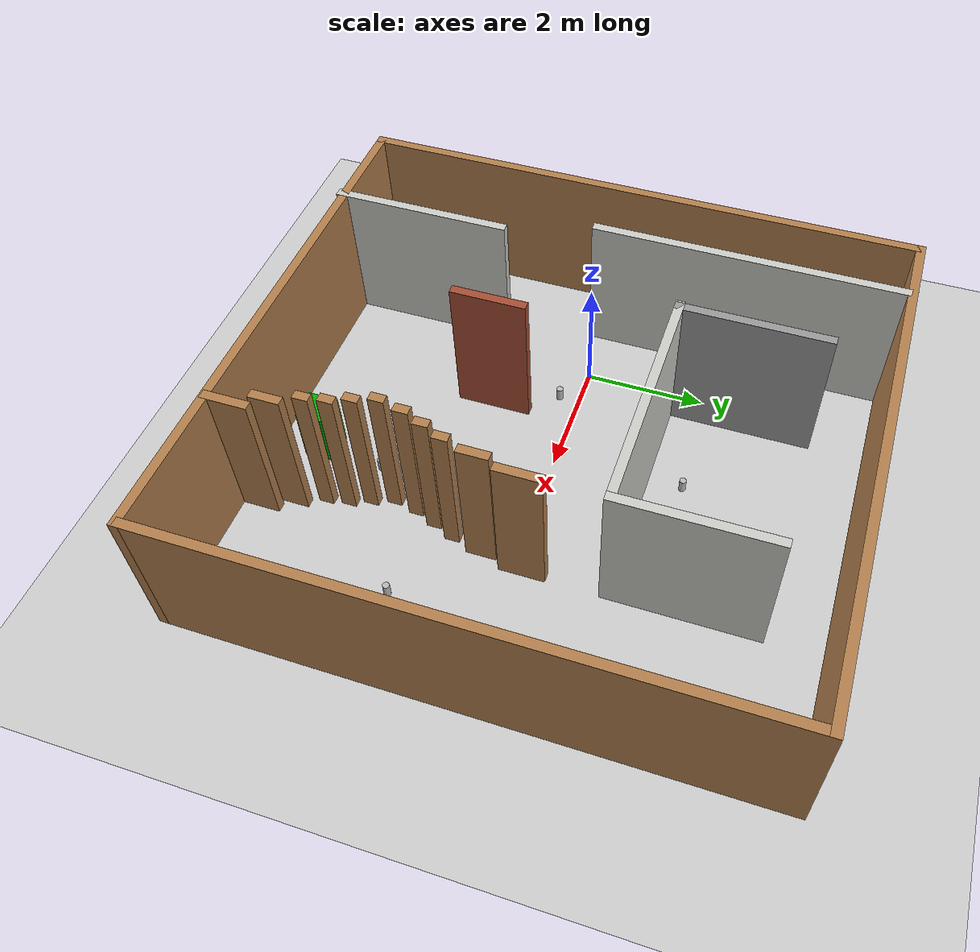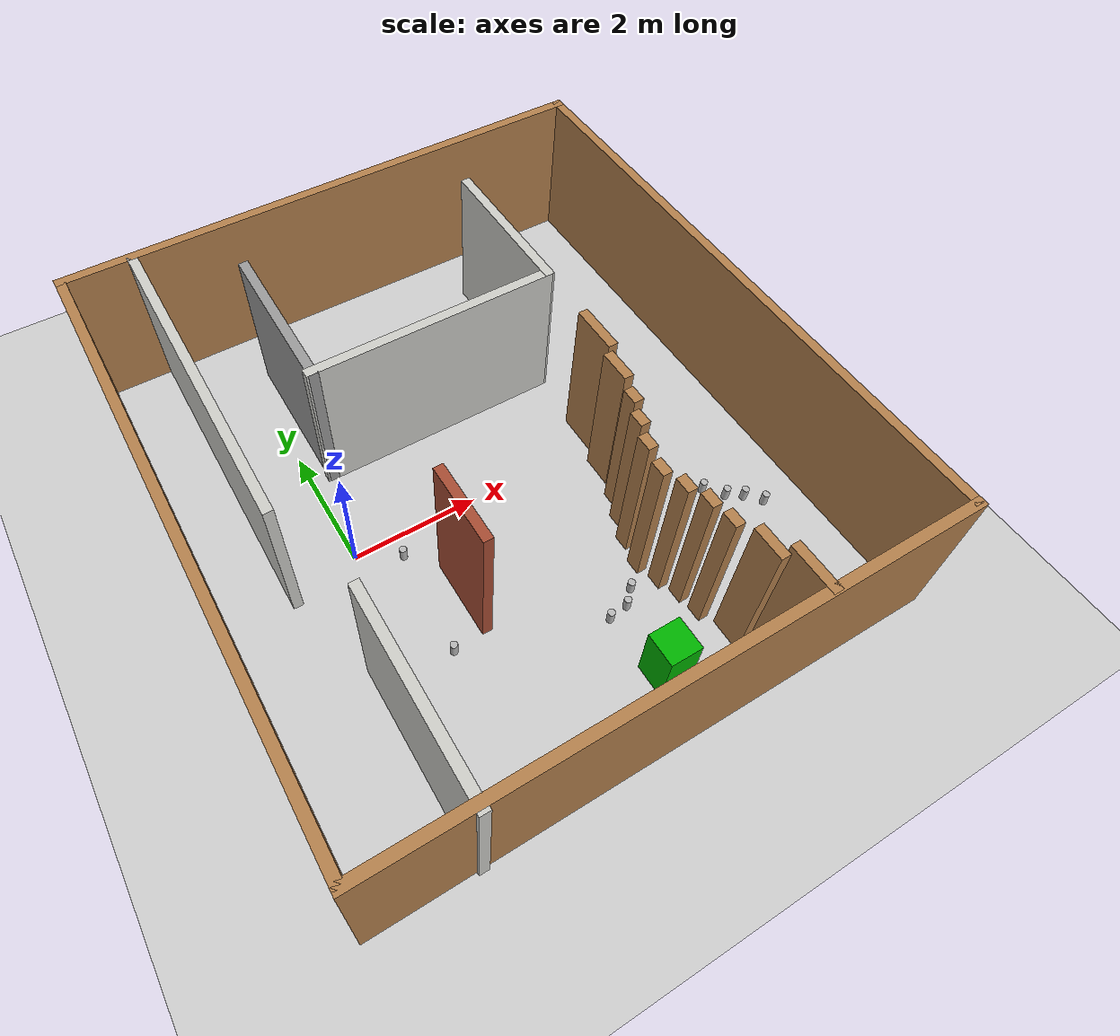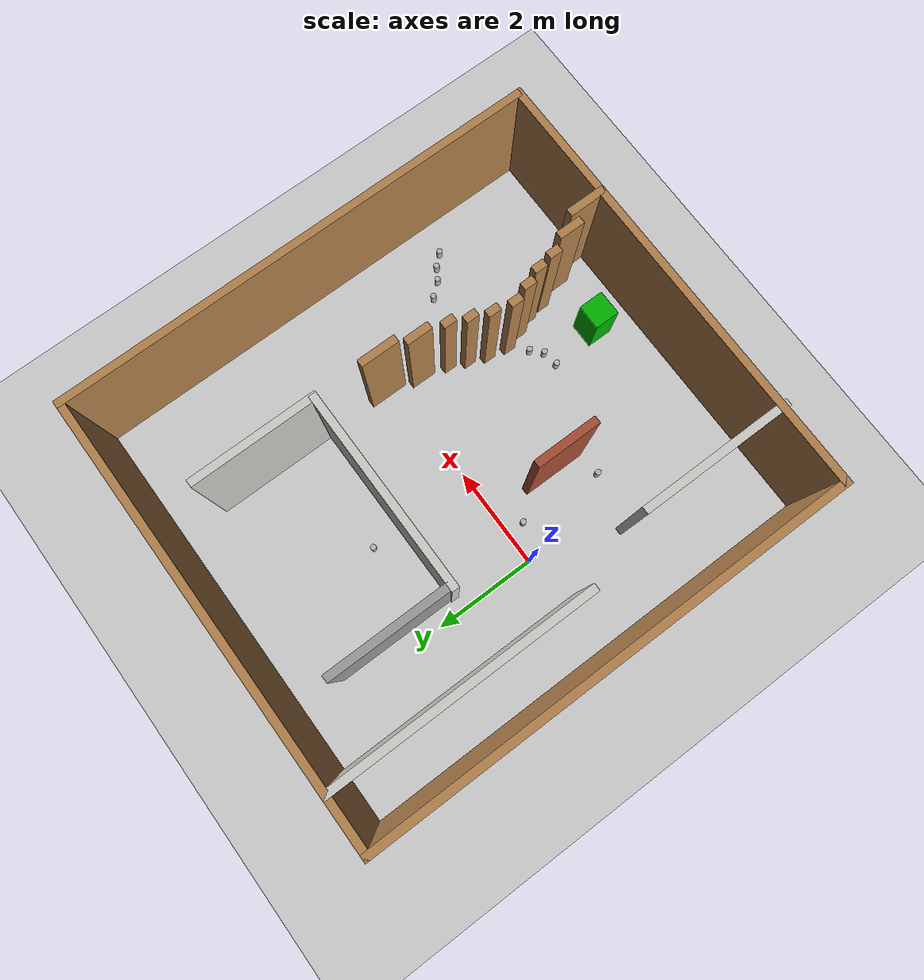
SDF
<sdf version="1.6">
 <world name="default">
  <model name="ground_plane">
   <static>1</static>
   <link name="link">
    <collision name="collision">
     <geometry><plane><normal>0 0 1</normal><size>100 100</size></plane></geometry>
     <surface><friction><ode><mu>100</mu><mu2>50</mu2></ode></friction></surface>
    </collision>
    <visual name="visual">
     <cast_shadows>0</cast_shadows>
     <geometry><plane><normal>0 0 1</normal><size>100 100</size></plane></geometry>
     <material>
      <script><uri>file://media/materials/scripts/gazebo.material</uri><name>Gazebo/Grey</name></script>
     </material>
    </visual>
   </link>
  </model>
  <model name="comp4034_environment">
   <pose>2.19918 0.14711 0 0 -0 0</pose>
   <link name="Wall_1">
    <collision name="Wall_1_Collision">
     <geometry><box><size>8.75 0.15 2.5</size></box></geometry>
     <pose>0 0 1.25 0 -0 0</pose>
    </collision>
    <visual name="Wall_1_Visual">
     <pose>0 0 1.25 0 -0 0</pose>
     <geometry><box><size>8.75 0.15 2.5</size></box></geometry>
     <material>
      <script><uri>file://media/materials/scripts/gazebo.material</uri><name>Gazebo/Wood</name></script>
      <ambient>1 1 1 1</ambient>
     </material>
     <meta><layer>0</layer></meta>
    </visual>
    <pose>-0 -4.67766 0 0 -0 0</pose>
   </link>
   <link name="Wall_16">
    <collision name="Wall_16_Collision">
     <geometry><box><size>0.25 0.15 2.5</size></box></geometry>
     <pose>0 0 1.25 0 -0 0</pose>
    </collision>
    <visual name="Wall_16_Visual">
     <pose>0 0 1.25 0 -0 0</pose>
     <geometry><box><size>0.25 0.15 2.5</size></box></geometry>
     <material>
      <script><uri>file://media/materials/scripts/gazebo.material</uri><name>Gazebo/Wood</name></script>
      <ambient>1 1 1 1</ambient>
     </material>
     <meta><layer>0</layer></meta>
    </visual>
    <pose>1.39958 -2.65835 0 0 -0 1.5708</pose>
   </link>
   <link name="Wall_18">
    <collision name="Wall_18_Collision">
     <geometry><box><size>0.25 0.15 2.5</size></box></geometry>
     <pose>0 0 1.25 0 -0 0</pose>
    </collision>
    <visual name="Wall_18_Visual">
     <pose>0 0 1.25 0 -0 0</pose>
     <geometry><box><size>0.25 0.15 2.5</size></box></geometry>
     <material>
      <script><uri>file://media/materials/scripts/gazebo.material</uri><name>Gazebo/Wood</name></script>
      <ambient>1 1 1 1</ambient>
     </material>
     <meta><layer>0</layer></meta>
    </visual>
    <pose>1.28384 -2.30376 0 0 -0 1.5708</pose>
   </link>
   <link name="Wall_21">
    <collision name="Wall_21_Collision">
     <geometry><box><size>0.25 0.15 2.5</size></box></geometry>
     <pose>0 0 1.25 0 -0 0</pose>
    </collision>
    <visual name="Wall_21_Visual">
     <pose>0 0 1.25 0 -0 0</pose>
     <geometry><box><size>0.25 0.15 2.5</size></box></geometry>
     <material>
      <script><uri>file://media/materials/scripts/gazebo.material</uri><name>Gazebo/Wood</name></script>
      <ambient>1 1 1 1</ambient>
     </material>
     <meta><layer>0</layer></meta>
    </visual>
    <pose>1.36975 -1.89289 0 0 -0 1.5708</pose>
   </link>
   <link name="Wall_23">
    <collision name="Wall_23_Collision">
     <geometry><box><size>0.25 0.15 2.5</size></box></geometry>
     <pose>0 0 1.25 0 -0 0</pose>
    </collision>
    <visual name="Wall_23_Visual">
     <pose>0 0 1.25 0 -0 0</pose>
     <geometry><box><size>0.25 0.15 2.5</size></box></geometry>
     <material>
      <script><uri>file://media/materials/scripts/gazebo.material</uri><name>Gazebo/Wood</name></script>
      <ambient>1 1 1 1</ambient>
     </material>
     <meta><layer>0</layer></meta>
    </visual>
    <pose>1.50857 -1.53493 0 0 -0 1.5708</pose>
   </link>
   <link name="Wall_25">
    <collision name="Wall_25_Collision">
     <geometry><box><size>0.25 0.15 2.5</size></box></geometry>
     <pose>0 0 1.25 0 -0 0</pose>
    </collision>
    <visual name="Wall_25_Visual">
     <pose>0 0 1.25 0 -0 0</pose>
     <geometry><box><size>0.25 0.15 2.5</size></box></geometry>
     <material>
      <script><uri>file://media/materials/scripts/gazebo.material</uri><name>Gazebo/Wood</name></script>
      <ambient>1 1 1 1</ambient>
     </material>
     <meta><layer>0</layer></meta>
    </visual>
    <pose>1.65732 -1.18034 0 0 -0 1.5708</pose>
   </link>
   <link name="Wall_27">
    <collision name="Wall_27_Collision">
     <geometry><box><size>0.5 0.15 2.5</size></box></geometry>
     <pose>0 0 1.25 0 -0 0</pose>
    </collision>
    <visual name="Wall_27_Visual">
     <pose>0 0 1.25 0 -0 0</pose>
     <geometry><box><size>0.5 0.15 2.5</size></box></geometry>
     <material>
      <script><uri>file://media/materials/scripts/gazebo.material</uri><name>Gazebo/Wood</name></script>
      <ambient>1 1 1 1</ambient>
     </material>
     <meta><layer>0</layer></meta>
    </visual>
    <pose>1.78619 -0.651034 0 0 -0 1.5708</pose>
   </link>
   <link name="Wall_3">
    <collision name="Wall_3_Collision">
     <geometry><box><size>9.5529 0.15 2.5</size></box></geometry>
     <pose>0 0 1.25 0 -0 0</pose>
    </collision>
    <visual name="Wall_3_Visual">
     <pose>0 0 1.25 0 -0 0</pose>
     <geometry><box><size>9.5529 0.15 2.5</size></box></geometry>
     <material>
      <script><uri>file://media/materials/scripts/gazebo.material</uri><name>Gazebo/Wood</name></script>
      <ambient>1 1 1 1</ambient>
     </material>
     <meta><layer>0</layer></meta>
    </visual>
    <pose>-4.3 0.023792 0 0 -0 1.5708</pose>
   </link>
   <link name="Wall_30">
    <collision name="Wall_30_Collision">
     <geometry><box><size>0.75 0.15 2.5</size></box></geometry>
     <pose>0 0 1.25 0 -0 0</pose>
    </collision>
    <visual name="Wall_30_Visual">
     <pose>0 0 1.25 0 -0 0</pose>
     <geometry><box><size>0.75 0.15 2.5</size></box></geometry>
     <material>
      <script><uri>file://media/materials/scripts/gazebo.material</uri><name>Gazebo/Wood</name></script>
      <ambient>1 1 1 1</ambient>
     </material>
     <meta><layer>0</layer></meta>
    </visual>
    <pose>1.92912 0.051937 0 0 -0 1.5708</pose>
   </link>
   <link name="Wall_32">
    <collision name="Wall_32_Collision">
     <geometry><box><size>2.5 0.15 2.5</size></box></geometry>
     <pose>0 0 1.25 0 -0 0</pose>
    </collision>
    <visual name="Wall_32_Visual">
     <pose>0 0 1.25 0 -0 0</pose>
     <geometry><box><size>2.5 0.15 2.5</size></box></geometry>
     <material>
      <script><uri>file://media/materials/scripts/gazebo.material</uri><name>Gazebo/CeilingTiled</name></script>
      <ambient>0.760784 0.662745 0.627451 1</ambient>
     </material>
     <meta><layer>0</layer></meta>
    </visual>
    <pose>1.9255 2.52077 0 0 -0 1.5708</pose>
   </link>
   <link name="Wall_34">
    <collision name="Wall_34_Collision">
     <geometry><box><size>3.92584 0.15 2.5</size></box></geometry>
     <pose>0 0 1.25 0 -0 0</pose>
    </collision>
    <visual name="Wall_34_Visual">
     <pose>0 0 1.25 0 -0 0</pose>
     <geometry><box><size>3.92584 0.15 2.5</size></box></geometry>
     <material>
      <script><uri>file://media/materials/scripts/gazebo.material</uri><name>Gazebo/CeilingTiled</name></script>
      <ambient>0.760784 0.662745 0.627451 1</ambient>
     </material>
     <meta><layer>0</layer></meta>
    </visual>
    <pose>0.007157 1.34577 0 0 -0 3.14159</pose>
   </link>
   <link name="Wall_4">
    <collision name="Wall_4_Collision">
     <geometry><box><size>8.75 0.15 2.5</size></box></geometry>
     <pose>0 0 1.25 0 -0 0</pose>
    </collision>
    <visual name="Wall_4_Visual">
     <pose>0 0 1.25 0 -0 0</pose>
     <geometry><box><size>8.75 0.15 2.5</size></box></geometry>
     <material>
      <script><uri>file://media/materials/scripts/gazebo.material</uri><name>Gazebo/Wood</name></script>
      <ambient>1 1 1 1</ambient>
     </material>
     <meta><layer>0</layer></meta>
    </visual>
    <pose>-0 4.72524 0 0 -0 0</pose>
   </link>
   <link name="Wall_40">
    <collision name="Wall_40_Collision">
     <geometry><box><size>1.25 0.15 2.5</size></box></geometry>
     <pose>0 0 1.25 0 -0 0</pose>
    </collision>
    <visual name="Wall_40_Visual">
     <pose>0 0 1.25 0 -0 0</pose>
     <geometry><box><size>1.25 0.15 2.5</size></box></geometry>
     <material>
      <script><uri>file://media/materials/scripts/gazebo.material</uri><name>Gazebo/Bricks</name></script>
      <ambient>1 1 1 1</ambient>
     </material>
     <meta><layer>0</layer></meta>
    </visual>
    <pose>-1.12606 -1.50275 0 0 -0 -1.5708</pose>
   </link>
   <link name="Wall_45">
    <collision name="Wall_45_Collision">
     <geometry><box><size>0.5 0.15 2.5</size></box></geometry>
     <pose>0 0 1.25 0 -0 0</pose>
    </collision>
    <visual name="Wall_45_Visual">
     <pose>0 0 1.25 0 -0 0</pose>
     <geometry><box><size>0.5 0.15 2.5</size></box></geometry>
     <material>
      <script><uri>file://media/materials/scripts/gazebo.material</uri><name>Gazebo/Wood</name></script>
      <ambient>1 1 1 1</ambient>
     </material>
     <meta><layer>0</layer></meta>
    </visual>
    <pose>1.76668 -3.82995 0 0 -0 1.5708</pose>
   </link>
   <link name="Wall_5">
    <collision name="Wall_5_Collision">
     <geometry><box><size>9.5 0.15 2.5</size></box></geometry>
     <pose>0 0 1.25 0 -0 0</pose>
    </collision>
    <visual name="Wall_5_Visual">
     <pose>0 0 1.25 0 -0 0</pose>
     <geometry><box><size>9.5 0.15 2.5</size></box></geometry>
     <material>
      <script><uri>file://media/materials/scripts/gazebo.material</uri><name>Gazebo/Wood</name></script>
      <ambient>1 1 1 1</ambient>
     </material>
     <meta><layer>0</layer></meta>
    </visual>
    <pose>4.3 0.050242 0 0 -0 -1.5708</pose>
   </link>
   <link name="Wall_52">
    <collision name="Wall_52_Collision">
     <geometry><box><size>0.75 0.15 2.5</size></box></geometry>
     <pose>0 0 1.25 0 -0 0</pose>
    </collision>
    <visual name="Wall_52_Visual">
     <pose>0 0 1.25 0 -0 0</pose>
     <geometry><box><size>0.75 0.15 2.5</size></box></geometry>
     <material>
      <script><uri>file://media/materials/scripts/gazebo.material</uri><name>Gazebo/Wood</name></script>
      <ambient>1 1 1 1</ambient>
     </material>
     <meta><layer>0</layer></meta>
    </visual>
    <pose>1.98668 -4.35495 0 0 -0 1.5708</pose>
   </link>
   <link name="Wall_56">
    <collision name="Wall_56_Collision">
     <geometry><box><size>0.25 0.15 2.5</size></box></geometry>
     <pose>0 0 1.25 0 -0 0</pose>
    </collision>
    <visual name="Wall_56_Visual">
     <pose>0 0 1.25 0 -0 0</pose>
     <geometry><box><size>0.25 0.15 2.5</size></box></geometry>
     <material>
      <script><uri>file://media/materials/scripts/gazebo.material</uri><name>Gazebo/Wood</name></script>
      <ambient>1 1 1 1</ambient>
     </material>
     <meta><layer>0</layer></meta>
    </visual>
    <pose>1.52668 -2.98495 0 0 -0 -1.5708</pose>
   </link>
   <link name="Wall_58">
    <collision name="Wall_58_Collision">
     <geometry><box><size>0.25 0.15 2.5</size></box></geometry>
     <pose>0 0 1.25 0 -0 0</pose>
    </collision>
    <visual name="Wall_58_Visual">
     <pose>0 0 1.25 0 -0 0</pose>
     <geometry><box><size>0.25 0.15 2.5</size></box></geometry>
     <material>
      <script><uri>file://media/materials/scripts/gazebo.material</uri><name>Gazebo/Wood</name></script>
      <ambient>1 1 1 1</ambient>
     </material>
     <meta><layer>0</layer></meta>
    </visual>
    <pose>1.58668 -3.34495 0 0 -0 -1.5708</pose>
   </link>
   <link name="Wall_60">
    <collision name="Wall_60_Collision">
     <geometry><box><size>2.5 0.15 2.5</size></box></geometry>
     <pose>0 0 1.25 0 -0 0</pose>
    </collision>
    <visual name="Wall_60_Visual">
     <pose>0 0 1.25 0 -0 0</pose>
     <geometry><box><size>2.5 0.15 2.5</size></box></geometry>
     <material>
      <script><uri>file://media/materials/scripts/gazebo.material</uri><name>Gazebo/Grey</name></script>
      <ambient>1 1 1 1</ambient>
     </material>
     <meta><layer>0</layer></meta>
    </visual>
    <pose>-1.85035 2.52077 0 0 -0 1.5708</pose>
   </link>
   <link name="Wall_7">
    <collision name="Wall_7_Collision">
     <geometry><box><size>5.25 0.15 2.5</size></box></geometry>
     <pose>0 0 1.25 0 -0 0</pose>
    </collision>
    <visual name="Wall_7_Visual">
     <pose>0 0 1.25 0 -0 0</pose>
     <geometry><box><size>5.25 0.15 2.5</size></box></geometry>
     <material>
      <script><uri>file://media/materials/scripts/gazebo.material</uri><name>Gazebo/CeilingTiled</name></script>
      <ambient>0.760784 0.662745 0.627451 1</ambient>
     </material>
     <meta><layer>0</layer></meta>
    </visual>
    <pose>-3.23089 2.17626 0 0 -0 -1.5708</pose>
   </link>
   <link name="Wall_9">
    <collision name="Wall_9_Collision">
     <geometry><box><size>3 0.15 2.5</size></box></geometry>
     <pose>0 0 1.25 0 -0 0</pose>
    </collision>
    <visual name="Wall_9_Visual">
     <pose>0 0 1.25 0 -0 0</pose>
     <geometry><box><size>3 0.15 2.5</size></box></geometry>
     <material>
      <script><uri>file://media/materials/scripts/gazebo.material</uri><name>Gazebo/CeilingTiled</name></script>
      <ambient>0.760784 0.662745 0.627451 1</ambient>
     </material>
     <meta><layer>0</layer></meta>
    </visual>
    <pose>-2.74464 -3.30126 0 0 -0 1.5708</pose>
   </link>
   <static>1</static>
  </model>
  <model name="beer">
   <link name="link">
    <pose>0 0 0.115 0 -0 0</pose>
    <inertial>
     <mass>0.01</mass>
     <inertia><ixx>0.00058</ixx><ixy>0</ixy><ixz>0</ixz><iyy>0.00058</iyy><iyz>0</iyz><izz>0.00019</izz></inertia>
    </inertial>
    <collision name="collision">
     <geometry><cylinder><radius>0.055</radius><length>0.23</length></cylinder></geometry>
    </collision>
    <visual name="visual">
     <geometry><cylinder><radius>0.055</radius><length>0.23</length></cylinder></geometry>
     <material>
      <script>
       <uri>model://beer/materials/scripts</uri>
       <uri>model://beer/materials/textures</uri>
       <name>Beer/Diffuse</name>
      </script>
     </material>
    </visual>
   </link>
   <pose>0.530573 -2.00233 -7e-06 -1e-06 -0 -4.9e-05</pose>
  </model>
  <model name="beer_0">
   <link name="link">
    <pose>0 0 0.115 0 -0 0</pose>
    <inertial>
     <mass>0.01</mass>
     <inertia><ixx>0.00058</ixx><ixy>0</ixy><ixz>0</ixz><iyy>0.00058</iyy><iyz>0</iyz><izz>0.00019</izz></inertia>
    </inertial>
    <collision name="collision">
     <geometry><cylinder><radius>0.055</radius><length>0.23</length></cylinder></geometry>
    </collision>
    <visual name="visual">
     <geometry><cylinder><radius>0.055</radius><length>0.23</length></cylinder></geometry>
     <material>
      <script>
       <uri>model://beer/materials/scripts</uri>
       <uri>model://beer/materials/textures</uri>
       <name>Beer/Diffuse</name>
      </script>
     </material>
    </visual>
   </link>
   <pose>0.622847 -0.339476 -7e-06 -1e-06 -0 -4.9e-05</pose>
  </model>
  <model name="beer_1">
   <link name="link">
    <pose>0 0 0.115 0 -0 0</pose>
    <inertial>
     <mass>0.01</mass>
     <inertia><ixx>0.00058</ixx><ixy>0</ixy><ixz>0</ixz><iyy>0.00058</iyy><iyz>0</iyz><izz>0.00019</izz></inertia>
    </inertial>
    <collision name="collision">
     <geometry><cylinder><radius>0.055</radius><length>0.23</length></cylinder></geometry>
    </collision>
    <visual name="visual">
     <geometry><cylinder><radius>0.055</radius><length>0.23</length></cylinder></geometry>
     <material>
      <script>
       <uri>model://beer/materials/scripts</uri>
       <uri>model://beer/materials/textures</uri>
       <name>Beer/Diffuse</name>
      </script>
     </material>
    </visual>
   </link>
   <pose>5.11085 -1.60496 -7e-06 -1e-06 -0 -3.1e-05</pose>
  </model>
  <model name="beer_3">
   <link name="link">
    <pose>0 0 0.115 0 -0 0</pose>
    <inertial>
     <mass>0.01</mass>
     <inertia><ixx>0.00058</ixx><ixy>0</ixy><ixz>0</ixz><iyy>0.00058</iyy><iyz>0</iyz><izz>0.00019</izz></inertia>
    </inertial>
    <collision name="collision">
     <geometry><cylinder><radius>0.055</radius><length>0.23</length></cylinder></geometry>
    </collision>
    <visual name="visual">
     <geometry><cylinder><radius>0.055</radius><length>0.23</length></cylinder></geometry>
     <material>
      <script>
       <uri>model://beer/materials/scripts</uri>
       <uri>model://beer/materials/textures</uri>
       <name>Beer/Diffuse</name>
      </script>
     </material>
    </visual>
   </link>
   <pose>3.1675 -2.44253 -7e-06 -1e-06 -0 -1.8e-05</pose>
  </model>
  <model name="beer_4">
   <link name="link">
    <pose>0 0 0.115 0 -0 0</pose>
    <inertial>
     <mass>0.01</mass>
     <inertia><ixx>0.00058</ixx><ixy>0</ixy><ixz>0</ixz><iyy>0.00058</iyy><iyz>0</iyz><izz>0.00019</izz></inertia>
    </inertial>
    <collision name="collision">
     <geometry><cylinder><radius>0.055</radius><length>0.23</length></cylinder></geometry>
    </collision>
    <visual name="visual">
     <geometry><cylinder><radius>0.055</radius><length>0.23</length></cylinder></geometry>
     <material>
      <script>
       <uri>model://beer/materials/scripts</uri>
       <uri>model://beer/materials/textures</uri>
       <name>Beer/Diffuse</name>
      </script>
     </material>
    </visual>
   </link>
   <pose>5.78051 -2.24553 -2e-06 1e-06 -0 -1.4e-05</pose>
  </model>
  <model name="beer_5">
   <link name="link">
    <pose>0 0 0.115 0 -0 0</pose>
    <inertial>
     <mass>0.01</mass>
     <inertia><ixx>0.00058</ixx><ixy>0</ixy><ixz>0</ixz><iyy>0.00058</iyy><iyz>0</iyz><izz>0.00019</izz></inertia>
    </inertial>
    <collision name="collision">
     <geometry><cylinder><radius>0.055</radius><length>0.23</length></cylinder></geometry>
    </collision>
    <visual name="visual">
     <geometry><cylinder><radius>0.055</radius><length>0.23</length></cylinder></geometry>
     <material>
      <script>
       <uri>model://beer/materials/scripts</uri>
       <uri>model://beer/materials/textures</uri>
       <name>Beer/Diffuse</name>
      </script>
     </material>
    </visual>
   </link>
   <pose>5.57469 -2.02105 -7e-06 -1e-06 -0 -2e-05</pose>
  </model>
  <model name="beer_6">
   <link name="link">
    <pose>0 0 0.115 0 -0 0</pose>
    <inertial>
     <mass>0.01</mass>
     <inertia><ixx>0.00058</ixx><ixy>0</ixy><ixz>0</ixz><iyy>0.00058</iyy><iyz>0</iyz><izz>0.00019</izz></inertia>
    </inertial>
    <collision name="collision">
     <geometry><cylinder><radius>0.055</radius><length>0.23</length></cylinder></geometry>
    </collision>
    <visual name="visual">
     <geometry><cylinder><radius>0.055</radius><length>0.23</length></cylinder></geometry>
     <material>
      <script>
       <uri>model://beer/materials/scripts</uri>
       <uri>model://beer/materials/textures</uri>
       <name>Beer/Diffuse</name>
      </script>
     </material>
    </visual>
   </link>
   <pose>5.34333 -1.87203 -7e-06 -1e-06 -0 -1.6e-05</pose>
  </model>
  <model name="green_box">
   <link name="link_0">
    <inertial>
     <mass>0.248832</mass>
     <inertia>
      <ixx>0.0258912</ixx>
      <ixy>0</ixy>
      <ixz>0</ixz>
      <iyy>0.0259005</iyy>
      <iyz>0</iyz>
      <izz>0.0103197</izz>
     </inertia>
    </inertial>
    <visual name="visual">
     <geometry><box><size>0.499059 0.498611 1</size></box></geometry>
     <material>
      <lighting>1</lighting>
      <script><uri>file://media/materials/scripts/gazebo.material</uri><name>Gazebo/Grey</name></script>
      <shader type="vertex"><normal_map>__default__</normal_map></shader>
      <ambient>0 0.3 0 1</ambient>
      <diffuse>0 0.7 0 1</diffuse>
      <specular>0.01 0.01 0.01 1</specular>
      <emissive>0 0 0 1</emissive>
     </material>
    </visual>
    <collision name="collision">
     <geometry><box><size>0.499059 0.498611 1</size></box></geometry>
     <surface>
      <friction>
       <ode><mu>1</mu><mu2>1</mu2><fdir1>0 0 0</fdir1><slip1>0</slip1><slip2>0</slip2></ode>
       <torsional>
        <coefficient>1</coefficient>
        <patch_radius>0</patch_radius>
        <surface_radius>0</surface_radius>
        <use_patch_radius>1</use_patch_radius>
        <ode><slip>0</slip></ode>
       </torsional>
      </friction>
      <bounce><restitution_coefficient>0</restitution_coefficient><threshold>1e+06</threshold></bounce>
      <contact>
       <collide_without_contact>0</collide_without_contact>
       <collide_without_contact_bitmask>1</collide_without_contact_bitmask>
       <collide_bitmask>1</collide_bitmask>
       <ode>
        <soft_cfm>0</soft_cfm>
        <soft_erp>0.2</soft_erp>
        <kp>1e+13</kp>
        <kd>1</kd>
        <max_vel>0.01</max_vel>
        <min_depth>0</min_depth>
       </ode>
       <bullet>
        <split_impulse>1</split_impulse>
        <split_impulse_penetration_threshold>-0.01</split_impulse_penetration_threshold>
        <soft_cfm>0</soft_cfm>
        <soft_erp>0.2</soft_erp>
        <kp>1e+13</kp>
        <kd>1</kd>
       </bullet>
      </contact>
     </surface>
    </collision>
   </link>
   <static>0</static>
   <pose>2.83304 -3.69854 0.5 0 -1e-06 -0.000716</pose>
  </model>
  <model name="beer_4_clone_11">
   <link name="link">
    <pose>0 0 0.115 0 -0 0</pose>
    <inertial>
     <mass>0.01</mass>
     <inertia><ixx>0.00058</ixx><ixy>0</ixy><ixz>0</ixz><iyy>0.00058</iyy><iyz>0</iyz><izz>0.00019</izz></inertia>
    </inertial>
    <collision name="collision">
     <geometry><cylinder><radius>0.055</radius><length>0.23</length></cylinder></geometry>
    </collision>
    <visual name="visual">
     <geometry><cylinder><radius>0.055</radius><length>0.23</length></cylinder></geometry>
     <material>
      <script>
       <uri>model://beer/materials/scripts</uri>
       <uri>model://beer/materials/textures</uri>
       <name>Beer/Diffuse</name>
      </script>
     </material>
    </visual>
   </link>
   <pose>1.87253 2.12765 -3e-06 0 -0 -3e-06</pose>
  </model>
  <model name="beer_4_clone_12">
   <link name="link">
    <pose>0 0 0.115 0 -0 0</pose>
    <inertial>
     <mass>0.01</mass>
     <inertia><ixx>0.00058</ixx><ixy>0</ixy><ixz>0</ixz><iyy>0.00058</iyy><iyz>0</iyz><izz>0.00019</izz></inertia>
    </inertial>
    <collision name="collision">
     <geometry><cylinder><radius>0.055</radius><length>0.23</length></cylinder></geometry>
    </collision>
    <visual name="visual">
     <geometry><cylinder><radius>0.055</radius><length>0.23</length></cylinder></geometry>
     <material>
      <script>
       <uri>model://beer/materials/scripts</uri>
       <uri>model://beer/materials/textures</uri>
       <name>Beer/Diffuse</name>
      </script>
     </material>
    </visual>
   </link>
   <pose>2.96327 -2.63773 -7e-06 -1e-06 0 -3e-06</pose>
  </model>
  <model name="beer_4_clone_13">
   <link name="link">
    <pose>0 0 0.115 0 -0 0</pose>
    <inertial>
     <mass>0.01</mass>
     <inertia><ixx>0.00058</ixx><ixy>0</ixy><ixz>0</ixz><iyy>0.00058</iyy><iyz>0</iyz><izz>0.00019</izz></inertia>
    </inertial>
    <collision name="collision">
     <geometry><cylinder><radius>0.055</radius><length>0.23</length></cylinder></geometry>
    </collision>
    <visual name="visual">
     <geometry><cylinder><radius>0.055</radius><length>0.23</length></cylinder></geometry>
     <material>
      <script>
       <uri>model://beer/materials/scripts</uri>
       <uri>model://beer/materials/textures</uri>
       <name>Beer/Diffuse</name>
      </script>
     </material>
    </visual>
   </link>
   <pose>2.6492 -2.6854 -3e-06 1e-06 0 -2e-06</pose>
  </model>
 </world>
</sdf>
